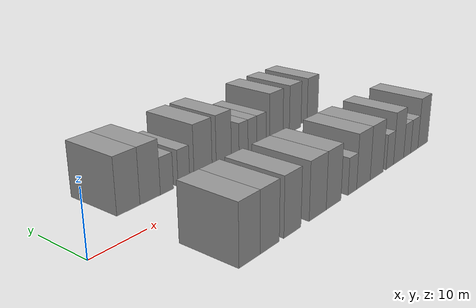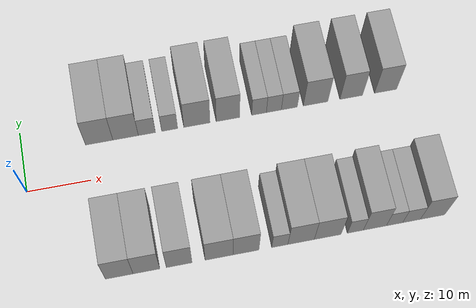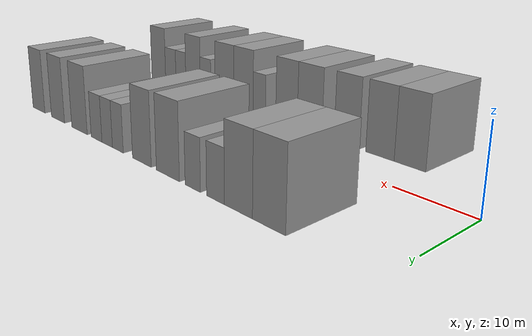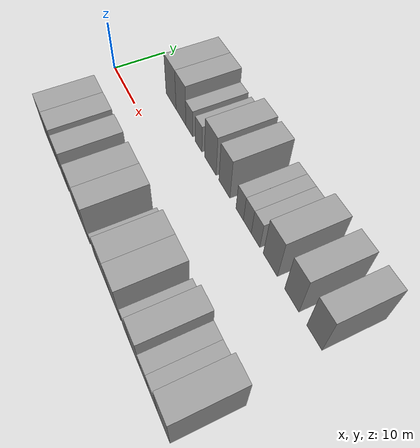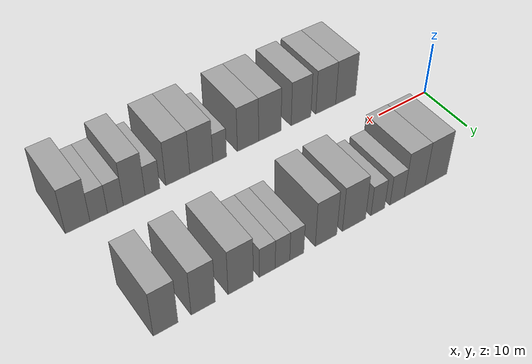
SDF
<sdf version="1.6">
 <world name="default">
  <model name="building_1">
   <static>1</static>
   <pose>12.1950 11.0000 0 0.000000 0.000000 1.570796</pose>
   <link name="link">
    <pose>0 0 4.50 0 0 0</pose>
    <collision name="collision"><geometry><box><size>10.0000 4.3899 9.0000</size></box></geometry></collision>
    <visual name="visual">
     <cast_shadows>0</cast_shadows>
     <geometry><box><size>10.0000 4.3899 9.0000</size></box></geometry>
     <material>
      <script>
       <uri>model://grey_wall/materials/scripts</uri>
       <uri>model://grey_wall/materials/textures</uri>
       <name>vrc/grey_wall</name>
      </script>
     </material>
    </visual>
   </link>
  </model>
  <model name="building_2">
   <static>1</static>
   <pose>16.4373 11.0000 0 0.000000 0.000000 1.570796</pose>
   <link name="link">
    <pose>0 0 4.50 0 0 0</pose>
    <collision name="collision"><geometry><box><size>10.0000 4.0949 9.0000</size></box></geometry></collision>
    <visual name="visual">
     <cast_shadows>0</cast_shadows>
     <geometry><box><size>10.0000 4.0949 9.0000</size></box></geometry>
     <material>
      <script>
       <uri>model://grey_wall/materials/scripts</uri>
       <uri>model://grey_wall/materials/textures</uri>
       <name>vrc/grey_wall</name>
      </script>
     </material>
    </visual>
   </link>
  </model>
  <model name="building_3">
   <static>1</static>
   <pose>19.8661 11.0000 0 0.000000 0.000000 1.570796</pose>
   <link name="link">
    <pose>0 0 3.00 0 0 0</pose>
    <collision name="collision"><geometry><box><size>10.0000 2.7627 6.0000</size></box></geometry></collision>
    <visual name="visual">
     <cast_shadows>0</cast_shadows>
     <geometry><box><size>10.0000 2.7627 6.0000</size></box></geometry>
     <material>
      <script>
       <uri>model://grey_wall/materials/scripts</uri>
       <uri>model://grey_wall/materials/textures</uri>
       <name>vrc/grey_wall</name>
      </script>
     </material>
    </visual>
   </link>
  </model>
  <model name="building_4">
   <static>1</static>
   <pose>23.5412 11.0000 0 0.000000 0.000000 1.570796</pose>
   <link name="link">
    <pose>0 0 3.00 0 0 0</pose>
    <collision name="collision"><geometry><box><size>10.0000 2.5876 6.0000</size></box></geometry></collision>
    <visual name="visual">
     <cast_shadows>0</cast_shadows>
     <geometry><box><size>10.0000 2.5876 6.0000</size></box></geometry>
     <material>
      <script>
       <uri>model://grey_wall/materials/scripts</uri>
       <uri>model://grey_wall/materials/textures</uri>
       <name>vrc/grey_wall</name>
      </script>
     </material>
    </visual>
   </link>
  </model>
  <model name="building_5">
   <static>1</static>
   <pose>27.9622 11.0000 0 0.000000 0.000000 1.570796</pose>
   <link name="link">
    <pose>0 0 4.50 0 0 0</pose>
    <collision name="collision"><geometry><box><size>10.0000 4.2543 9.0000</size></box></geometry></collision>
    <visual name="visual">
     <cast_shadows>0</cast_shadows>
     <geometry><box><size>10.0000 4.2543 9.0000</size></box></geometry>
     <material>
      <script>
       <uri>model://grey_wall/materials/scripts</uri>
       <uri>model://grey_wall/materials/textures</uri>
       <name>vrc/grey_wall</name>
      </script>
     </material>
    </visual>
   </link>
  </model>
  <model name="building_6">
   <static>1</static>
   <pose>32.9959 11.0000 0 0.000000 0.000000 1.570796</pose>
   <link name="link">
    <pose>0 0 4.50 0 0 0</pose>
    <collision name="collision"><geometry><box><size>10.0000 3.8131 9.0000</size></box></geometry></collision>
    <visual name="visual">
     <cast_shadows>0</cast_shadows>
     <geometry><box><size>10.0000 3.8131 9.0000</size></box></geometry>
     <material>
      <script>
       <uri>model://grey_wall/materials/scripts</uri>
       <uri>model://grey_wall/materials/textures</uri>
       <name>vrc/grey_wall</name>
      </script>
     </material>
    </visual>
   </link>
  </model>
  <model name="building_7">
   <static>1</static>
   <pose>38.1101 11.0000 0 0.000000 0.000000 1.570796</pose>
   <link name="link">
    <pose>0 0 3.00 0 0 0</pose>
    <collision name="collision"><geometry><box><size>10.0000 2.4154 6.0000</size></box></geometry></collision>
    <visual name="visual">
     <cast_shadows>0</cast_shadows>
     <geometry><box><size>10.0000 2.4154 6.0000</size></box></geometry>
     <material>
      <script>
       <uri>model://grey_wall/materials/scripts</uri>
       <uri>model://grey_wall/materials/textures</uri>
       <name>vrc/grey_wall</name>
      </script>
     </material>
    </visual>
   </link>
  </model>
  <model name="building_8">
   <static>1</static>
   <pose>40.5467 11.0000 0 0.000000 0.000000 1.570796</pose>
   <link name="link">
    <pose>0 0 3.00 0 0 0</pose>
    <collision name="collision"><geometry><box><size>10.0000 2.4577 6.0000</size></box></geometry></collision>
    <visual name="visual">
     <cast_shadows>0</cast_shadows>
     <geometry><box><size>10.0000 2.4577 6.0000</size></box></geometry>
     <material>
      <script>
       <uri>model://grey_wall/materials/scripts</uri>
       <uri>model://grey_wall/materials/textures</uri>
       <name>vrc/grey_wall</name>
      </script>
     </material>
    </visual>
   </link>
  </model>
  <model name="building_9">
   <static>1</static>
   <pose>43.0879 11.0000 0 0.000000 0.000000 1.570796</pose>
   <link name="link">
    <pose>0 0 3.00 0 0 0</pose>
    <collision name="collision"><geometry><box><size>10.0000 2.6247 6.0000</size></box></geometry></collision>
    <visual name="visual">
     <cast_shadows>0</cast_shadows>
     <geometry><box><size>10.0000 2.6247 6.0000</size></box></geometry>
     <material>
      <script>
       <uri>model://grey_wall/materials/scripts</uri>
       <uri>model://grey_wall/materials/textures</uri>
       <name>vrc/grey_wall</name>
      </script>
     </material>
    </visual>
   </link>
  </model>
  <model name="building_10">
   <static>1</static>
   <pose>47.4309 11.0000 0 0.000000 0.000000 1.570796</pose>
   <link name="link">
    <pose>0 0 4.50 0 0 0</pose>
    <collision name="collision"><geometry><box><size>10.0000 4.0614 9.0000</size></box></geometry></collision>
    <visual name="visual">
     <cast_shadows>0</cast_shadows>
     <geometry><box><size>10.0000 4.0614 9.0000</size></box></geometry>
     <material>
      <script>
       <uri>model://grey_wall/materials/scripts</uri>
       <uri>model://grey_wall/materials/textures</uri>
       <name>vrc/grey_wall</name>
      </script>
     </material>
    </visual>
   </link>
  </model>
  <model name="building_11">
   <static>1</static>
   <pose>53.3396 11.0000 0 0.000000 0.000000 1.570796</pose>
   <link name="link">
    <pose>0 0 4.50 0 0 0</pose>
    <collision name="collision"><geometry><box><size>10.0000 3.7560 9.0000</size></box></geometry></collision>
    <visual name="visual">
     <cast_shadows>0</cast_shadows>
     <geometry><box><size>10.0000 3.7560 9.0000</size></box></geometry>
     <material>
      <script>
       <uri>model://grey_wall/materials/scripts</uri>
       <uri>model://grey_wall/materials/textures</uri>
       <name>vrc/grey_wall</name>
      </script>
     </material>
    </visual>
   </link>
  </model>
  <model name="building_12">
   <static>1</static>
   <pose>59.0669 11.0000 0 0.000000 0.000000 1.570796</pose>
   <link name="link">
    <pose>0 0 4.50 0 0 0</pose>
    <collision name="collision"><geometry><box><size>10.0000 3.6986 9.0000</size></box></geometry></collision>
    <visual name="visual">
     <cast_shadows>0</cast_shadows>
     <geometry><box><size>10.0000 3.6986 9.0000</size></box></geometry>
     <material>
      <script>
       <uri>model://grey_wall/materials/scripts</uri>
       <uri>model://grey_wall/materials/textures</uri>
       <name>vrc/grey_wall</name>
      </script>
     </material>
    </visual>
   </link>
  </model>
  <model name="building_50">
   <static>1</static>
   <pose>12.1024 -11.0000 0 0.000000 0.000000 1.570796</pose>
   <link name="link">
    <pose>0 0 4.50 0 0 0</pose>
    <collision name="collision"><geometry><box><size>10.0000 4.2049 9.0000</size></box></geometry></collision>
    <visual name="visual">
     <cast_shadows>0</cast_shadows>
     <geometry><box><size>10.0000 4.2049 9.0000</size></box></geometry>
     <material>
      <script>
       <uri>model://grey_wall/materials/scripts</uri>
       <uri>model://grey_wall/materials/textures</uri>
       <name>vrc/grey_wall</name>
      </script>
     </material>
    </visual>
   </link>
  </model>
  <model name="building_51">
   <static>1</static>
   <pose>16.2415 -11.0000 0 0.000000 0.000000 1.570796</pose>
   <link name="link">
    <pose>0 0 4.50 0 0 0</pose>
    <collision name="collision"><geometry><box><size>10.0000 4.0732 9.0000</size></box></geometry></collision>
    <visual name="visual">
     <cast_shadows>0</cast_shadows>
     <geometry><box><size>10.0000 4.0732 9.0000</size></box></geometry>
     <material>
      <script>
       <uri>model://grey_wall/materials/scripts</uri>
       <uri>model://grey_wall/materials/textures</uri>
       <name>vrc/grey_wall</name>
      </script>
     </material>
    </visual>
   </link>
  </model>
  <model name="building_52">
   <static>1</static>
   <pose>21.2450 -11.0000 0 0.000000 0.000000 1.570796</pose>
   <link name="link">
    <pose>0 0 4.50 0 0 0</pose>
    <collision name="collision"><geometry><box><size>10.0000 3.9338 9.0000</size></box></geometry></collision>
    <visual name="visual">
     <cast_shadows>0</cast_shadows>
     <geometry><box><size>10.0000 3.9338 9.0000</size></box></geometry>
     <material>
      <script>
       <uri>model://grey_wall/materials/scripts</uri>
       <uri>model://grey_wall/materials/textures</uri>
       <name>vrc/grey_wall</name>
      </script>
     </material>
    </visual>
   </link>
  </model>
  <model name="building_53">
   <static>1</static>
   <pose>27.3700 -11.0000 0 0.000000 0.000000 1.570796</pose>
   <link name="link">
    <pose>0 0 4.50 0 0 0</pose>
    <collision name="collision"><geometry><box><size>10.0000 4.3161 9.0000</size></box></geometry></collision>
    <visual name="visual">
     <cast_shadows>0</cast_shadows>
     <geometry><box><size>10.0000 4.3161 9.0000</size></box></geometry>
     <material>
      <script>
       <uri>model://grey_wall/materials/scripts</uri>
       <uri>model://grey_wall/materials/textures</uri>
       <name>vrc/grey_wall</name>
      </script>
     </material>
    </visual>
   </link>
  </model>
  <model name="building_54">
   <static>1</static>
   <pose>31.5227 -11.0000 0 0.000000 0.000000 1.570796</pose>
   <link name="link">
    <pose>0 0 4.50 0 0 0</pose>
    <collision name="collision"><geometry><box><size>10.0000 3.9894 9.0000</size></box></geometry></collision>
    <visual name="visual">
     <cast_shadows>0</cast_shadows>
     <geometry><box><size>10.0000 3.9894 9.0000</size></box></geometry>
     <material>
      <script>
       <uri>model://grey_wall/materials/scripts</uri>
       <uri>model://grey_wall/materials/textures</uri>
       <name>vrc/grey_wall</name>
      </script>
     </material>
    </visual>
   </link>
  </model>
  <model name="building_55">
   <static>1</static>
   <pose>36.7684 -11.0000 0 0.000000 0.000000 1.570796</pose>
   <link name="link">
    <pose>0 0 3.00 0 0 0</pose>
    <collision name="collision"><geometry><box><size>10.0000 2.5021 6.0000</size></box></geometry></collision>
    <visual name="visual">
     <cast_shadows>0</cast_shadows>
     <geometry><box><size>10.0000 2.5021 6.0000</size></box></geometry>
     <material>
      <script>
       <uri>model://grey_wall/materials/scripts</uri>
       <uri>model://grey_wall/materials/textures</uri>
       <name>vrc/grey_wall</name>
      </script>
     </material>
    </visual>
   </link>
  </model>
  <model name="building_56">
   <static>1</static>
   <pose>40.0801 -11.0000 0 0.000000 0.000000 1.570796</pose>
   <link name="link">
    <pose>0 0 4.50 0 0 0</pose>
    <collision name="collision"><geometry><box><size>10.0000 4.1213 9.0000</size></box></geometry></collision>
    <visual name="visual">
     <cast_shadows>0</cast_shadows>
     <geometry><box><size>10.0000 4.1213 9.0000</size></box></geometry>
     <material>
      <script>
       <uri>model://grey_wall/materials/scripts</uri>
       <uri>model://grey_wall/materials/textures</uri>
       <name>vrc/grey_wall</name>
      </script>
     </material>
    </visual>
   </link>
  </model>
  <model name="building_57">
   <static>1</static>
   <pose>44.2422 -11.0000 0 0.000000 0.000000 1.570796</pose>
   <link name="link">
    <pose>0 0 4.50 0 0 0</pose>
    <collision name="collision"><geometry><box><size>10.0000 4.2028 9.0000</size></box></geometry></collision>
    <visual name="visual">
     <cast_shadows>0</cast_shadows>
     <geometry><box><size>10.0000 4.2028 9.0000</size></box></geometry>
     <material>
      <script>
       <uri>model://grey_wall/materials/scripts</uri>
       <uri>model://grey_wall/materials/textures</uri>
       <name>vrc/grey_wall</name>
      </script>
     </material>
    </visual>
   </link>
  </model>
  <model name="building_58">
   <static>1</static>
   <pose>48.6068 -11.0000 0 0.000000 0.000000 1.570796</pose>
   <link name="link">
    <pose>0 0 3.00 0 0 0</pose>
    <collision name="collision"><geometry><box><size>10.0000 2.5265 6.0000</size></box></geometry></collision>
    <visual name="visual">
     <cast_shadows>0</cast_shadows>
     <geometry><box><size>10.0000 2.5265 6.0000</size></box></geometry>
     <material>
      <script>
       <uri>model://grey_wall/materials/scripts</uri>
       <uri>model://grey_wall/materials/textures</uri>
       <name>vrc/grey_wall</name>
      </script>
     </material>
    </visual>
   </link>
  </model>
  <model name="building_59">
   <static>1</static>
   <pose>51.6801 -11.0000 0 0.000000 0.000000 1.570796</pose>
   <link name="link">
    <pose>0 0 4.50 0 0 0</pose>
    <collision name="collision"><geometry><box><size>10.0000 3.6200 9.0000</size></box></geometry></collision>
    <visual name="visual">
     <cast_shadows>0</cast_shadows>
     <geometry><box><size>10.0000 3.6200 9.0000</size></box></geometry>
     <material>
      <script>
       <uri>model://grey_wall/materials/scripts</uri>
       <uri>model://grey_wall/materials/textures</uri>
       <name>vrc/grey_wall</name>
      </script>
     </material>
    </visual>
   </link>
  </model>
  <model name="building_60">
   <static>1</static>
   <pose>54.7861 -11.0000 0 0.000000 0.000000 1.570796</pose>
   <link name="link">
    <pose>0 0 3.00 0 0 0</pose>
    <collision name="collision"><geometry><box><size>10.0000 2.5920 6.0000</size></box></geometry></collision>
    <visual name="visual">
     <cast_shadows>0</cast_shadows>
     <geometry><box><size>10.0000 2.5920 6.0000</size></box></geometry>
     <material>
      <script>
       <uri>model://grey_wall/materials/scripts</uri>
       <uri>model://grey_wall/materials/textures</uri>
       <name>vrc/grey_wall</name>
      </script>
     </material>
    </visual>
   </link>
  </model>
  <model name="building_61">
   <static>1</static>
   <pose>57.4887 -11.0000 0 0.000000 0.000000 1.570796</pose>
   <link name="link">
    <pose>0 0 3.00 0 0 0</pose>
    <collision name="collision"><geometry><box><size>10.0000 2.8131 6.0000</size></box></geometry></collision>
    <visual name="visual">
     <cast_shadows>0</cast_shadows>
     <geometry><box><size>10.0000 2.8131 6.0000</size></box></geometry>
     <material>
      <script>
       <uri>model://grey_wall/materials/scripts</uri>
       <uri>model://grey_wall/materials/textures</uri>
       <name>vrc/grey_wall</name>
      </script>
     </material>
    </visual>
   </link>
  </model>
  <model name="building_62">
   <static>1</static>
   <pose>60.8366 -11.0000 0 0.000000 0.000000 1.570796</pose>
   <link name="link">
    <pose>0 0 4.50 0 0 0</pose>
    <collision name="collision"><geometry><box><size>10.0000 3.8828 9.0000</size></box></geometry></collision>
    <visual name="visual">
     <cast_shadows>0</cast_shadows>
     <geometry><box><size>10.0000 3.8828 9.0000</size></box></geometry>
     <material>
      <script>
       <uri>model://grey_wall/materials/scripts</uri>
       <uri>model://grey_wall/materials/textures</uri>
       <name>vrc/grey_wall</name>
      </script>
     </material>
    </visual>
   </link>
  </model>
 </world>
</sdf>
